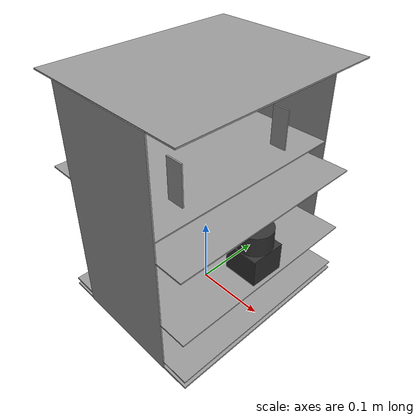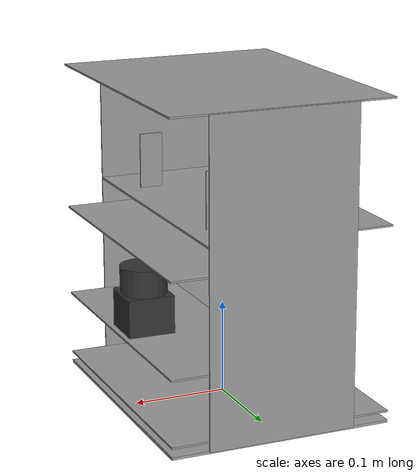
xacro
<?xml version="1.0"?>

<!-- XML namespaces -->
<robot xmlns:sensor="http://playerstage.sourceforge.net/gazebo/xmlschema/#sensor"
       xmlns:controller="http://playerstage.sourceforge.net/gazebo/xmlschema/#controller"
       xmlns:interface="http://playerstage.sourceforge.net/gazebo/xmlschema/#interface"
       xmlns:xacro="http://ros.org/wiki/xacro"
	   name="indomptable">

	<xacro:macro name="cyan1">
		<material name="cyan1">
			<color rgba="0 0.9 0.9 1.0"/>
		</material>
	</xacro:macro>

	<xacro:macro name="cyan2">
		<material name="cyan2">
	     <color rgba="0 0.7 0.7 1.0"/>
		</material>
	</xacro:macro>

	<xacro:macro name="cyan3">
		<material name="cyan3">
	     <color rgba="0 0.5 0.5 1.0"/>
		</material>
	</xacro:macro>

	<xacro:macro name="black">
		<material name="black">
			<color rgba="0.1 0.1 0.1 1.0"/>
		</material>
	</xacro:macro>

	<xacro:macro name="black1">
		<material name="black1">
			<color rgba="0.2 0.2 0.2 1.0"/>
		</material>
	</xacro:macro>

	<xacro:macro name="yellow2">
		<material name="yellow2">
			<color rgba="0.8 0.8 0 1.0"/>
		</material>
	</xacro:macro>

	<xacro:macro name="green1">
		<material name="green1">
			<color rgba="0 1 0 1.0"/>
		</material>
	</xacro:macro>

	<xacro:macro name="green2">
		<material name="green2">
			<color rgba="0.1 0.8 0 1.0"/>
		</material>
	</xacro:macro>

	<xacro:macro name="green3">
		<material name="green3">
			<color rgba="0.1 0.5 0.1 1.0"/>
		</material>
	</xacro:macro>

	<xacro:macro name="grey1">
		<material name="grey1">
			<color rgba="0.9 0.9 0.9 1.0"/>
		</material>
	</xacro:macro>

	<xacro:macro name="grey2">
		<material name="grey2">
			<color rgba="0.6 0.6 0.6 1.0"/>
		</material>
	</xacro:macro>

	<xacro:macro name="grey3">
		<material name="grey3">
			<color rgba="0.8 0.8 0.8 1.0"/>
		</material>
	</xacro:macro>

	<xacro:macro name="blue1">
		<material name="blue1">
			<color rgba="0 0 0.9 1.0"/>
		</material>
	</xacro:macro>

	<xacro:macro name="ax12_color">
		<material name="ax12_color">
			<color rgba="0.1 0.1 0.1 1.0"/>
		</material>
	</xacro:macro>

	<xacro:macro name="bracket_color">
		<material name="bracket_color">
			<color rgba="0.9 0.9 0.9 1.0"/>
		</material>
	</xacro:macro>

	<xacro:macro name="ax12" params="name xyz rpy">
		<link name="${name}">
			<visual>
				<origin xyz="${xyz}" rpy="${rpy}" />
				<geometry>
					<box size="0.5 0.32 0.38" />
				</geometry>
				<material name="black1">
					<color rgba="0.2 0.2 0.2 1.0"/>
				</material>
             </visual>
             <collision>
				<origin xyz="${xyz}" rpy="${rpy}" />
					<geometry>
						<box size="0.5 0.32 0.38" />
					</geometry>
             </collision>
             <xacro:default_inertial mass="0.055" />
        </link>
        <xacro:default_gazebo name="${name}" material="Gazebo/FlatBlack" />
	</xacro:macro>

	<xacro:macro name="bracket1" params="name xyz rpy">
		<link name="${name}">
			<visual>
				<origin xyz="${xyz}" rpy="${rpy}" />
				<geometry>
					<box size="0.05 0.025 0.038" />
				</geometry>
				<material name="black1">
					<color rgba="0.2 0.2 0.2 1.0"/>
				</material>
             </visual>
             <collision>
				<origin xyz="${xyz}" rpy="${rpy}" />
					<geometry>
						<box size="0.05 0.025 0.038" />
					</geometry>
             </collision>
             <xacro:default_inertial mass="0.02" />
        </link>
        <xacro:default_gazebo name="${name}" material="Gazebo/WhiteEmissive" />
	</xacro:macro>

	<xacro:macro name="my_box" params="name lwh xyz rpy mass material *rviz_color">
		<link name="${name}">
			<visual>
				<origin xyz="${xyz}" rpy="${rpy}" />
				<geometry>
					<box size="${lwh}" />
				</geometry>
			    <xacro:insert_block name="rviz_color" />
             </visual>
             <collision>
				<origin xyz="${xyz}" rpy="${rpy}" />
					<geometry>
						<box size="${lwh}" />
					</geometry>
             </collision>
             <xacro:default_inertial mass="${mass}" />
        </link>
        <xacro:default_gazebo name="${name}" material="${material}" />
	</xacro:macro>

	<xacro:macro name="my_cylinder" params="name l r xyz rpy mass material *rviz_color">
		<link name="${name}">
			<visual>
				<origin xyz="${xyz}" rpy="${rpy}" />
				<geometry>
					<cylinder length="${l}" radius="${r}" />
				</geometry>
            	<xacro:insert_block name="rviz_color" />
            </visual>
            <collision>
				<origin xyz="${xyz}" rpy="${rpy}" />
					<geometry>
						<cylinder length="${l}" radius="${r}" />
					</geometry>
            </collision>
            <xacro:default_inertial mass="${mass}" />
        </link>
        <xacro:default_gazebo name="${name}" material="${material}" />
	</xacro:macro>

    <xacro:macro name="default_inertial" params="mass">
		<inertial>
			<mass value="${mass}" />
			<inertia ixx="0.001" ixy="0.0" ixz="0.0"
                     iyy="0.001" iyz="0.0"
                     izz="0.001" />
			</inertial>
    </xacro:macro>

    <xacro:macro name="default_gazebo" params="name material">
 		<gazebo reference="${name}">
			<material>${material}</material>
			<selfCollide>false</selfCollide>
			<turnGravityOff>true</turnGravityOff>
		</gazebo>
    </xacro:macro>

 	<!-- ============================   Body   ============================ -->

	<xacro:my_box name="base_link" lwh="0.24 0.3 0.003" xyz="0 0 0" rpy="0 0 0" mass="0.5" material="Gazebo/Grey">
		<xacro:grey2 />
	</xacro:my_box>

	<xacro:my_box name="base_laser_bottom" lwh="0.05 0.05 0.041" xyz="0 0 0" rpy="0 0 0" mass="0.1" material="Gazebo/FlatBlack">
		<xacro:black1 />
	</xacro:my_box>

	<xacro:my_cylinder name="base_laser" l="0.029" r="0.025" xyz="0 0 0" rpy="0 0 0" mass="0.1" material="Gazebo/Grey">
		<xacro:black1 />
	</xacro:my_cylinder>

	<xacro:my_box name="first_level" lwh="0.24 0.3 0.002" xyz="0 0 0" rpy="0 0 0" mass="0.5" material="Gazebo/Grey">
                <xacro:grey2 />
        </xacro:my_box>

	<xacro:my_box name="second_level" lwh="0.12 0.3 0.002" xyz="0 0 0" rpy="0 0 0" mass="0.5" material="Gazebo/Grey">
                <xacro:grey2 />
        </xacro:my_box>

	<xacro:my_box name="third_level" lwh="0.12 0.3 0.002" xyz="0 0 0" rpy="0 0 0" mass="0.5" material="Gazebo/Grey">
                <xacro:grey2 />
        </xacro:my_box>

	<xacro:my_box name="netbook_level" lwh="0.2 0.3 0.002" xyz="0 0 0" rpy="0 0 0" mass="0.5" material="Gazebo/Grey">
                <xacro:grey2 />
        </xacro:my_box>

	<xacro:my_box name="top_level" lwh="0.24 0.3 0.002" xyz="0 0 0" rpy="0 0 0" mass="0.5" material="Gazebo/Grey">
                <xacro:grey2 />
        </xacro:my_box>

	<xacro:my_box name="right_arm_panel" lwh="0.025 0.002 0.06" xyz="0 0 0" rpy="0 0 0" mass="0.5" material="Gazebo/Grey">
                <xacro:grey2 />
        </xacro:my_box>

        <xacro:my_box name="left_arm_panel" lwh="0.025 0.002 0.06" xyz="0 0 0" rpy="0 0 0" mass="0.5" material="Gazebo/Grey">
                <xacro:grey2 />
        </xacro:my_box>

        <xacro:my_box name="right_panel" lwh="0.16 0.002 0.34" xyz="0 0 0" rpy="0 0 0" mass="0.5" material="Gazebo/Grey">
                <xacro:grey2 />
        </xacro:my_box>

        <xacro:my_box name="left_panel" lwh="0.16 0.002 0.34" xyz="0 0 0" rpy="0 0 0" mass="0.5" material="Gazebo/Grey">
                <xacro:grey2 />
        </xacro:my_box>

 	<!-- ============================   Arms   ============================ -->

	<xacro:macro name="arm" params="side reflect">

	</xacro:macro>

	<xacro:arm side="left" reflect="1" />

	<xacro:arm side="right" reflect="-1" />

	<!-- =================== Joint Definitions ==================== -->

	<joint name="first_level_joint" type="fixed">
    	<parent link="base_link" />
    	<child link="first_level" />
    	<origin xyz="0 0 0.011" rpy="0 0 0" />
	</joint>

	<joint name="second_level_joint" type="fixed">
    	<parent link="first_level" />
    	<child link="second_level" />
    	<origin xyz="0.06 0 0.07" rpy="0 0 0" />
	</joint>

	<joint name="third_level_joint" type="fixed">
    	<parent link="first_level" />
    	<child link="third_level" />
    	<origin xyz="0.06 0 0.17" rpy="0 0 0" />
	</joint>

	<joint name="netbook_level_joint" type="fixed">
    	<parent link="base_link" />
    	<child link="netbook_level" />
    	<origin xyz="-0.02 0 0.21" rpy="0 0 0" />
	</joint>

	<joint name="top_level_joint" type="fixed">
    	<parent link="base_link" />
    	<child link="top_level" />
    	<origin xyz="0 0 0.34" rpy="0 0 0" />
	</joint>

	<joint name="base_laser_bottom_joint" type="fixed">
    	<parent link="second_level" />
    	<child link="base_laser_bottom" />
    	<origin xyz="0.03 0 0.022" rpy="0 0 -0.02" />
	</joint>

	<joint name="base_laser_joint" type="fixed">
    	<parent link="base_laser_bottom" />
    	<child link="base_laser" />
    	<origin xyz="0 0 0.035" rpy="0 0 0" />
	</joint>

	<joint name="left_arm_panel_joint" type="fixed">
    	<parent link="netbook_level" />
    	<child link="left_arm_panel" />
    	<origin xyz="0.065 0.09 0.03" rpy="0 0 0" />
	</joint>

        <joint name="right_arm_panel_joint" type="fixed">
        <parent link="netbook_level" />
        <child link="right_arm_panel" />
        <origin xyz="0.065 -0.09 0.03" rpy="0 0 0" />
        </joint>

        <joint name="left_panel_joint" type="fixed">
        <parent link="base_link" />
        <child link="left_panel" />
        <origin xyz="0 0.15 0.17" rpy="0 0 0" />
        </joint>

        <joint name="right_panel_joint" type="fixed">
        <parent link="base_link" />
        <child link="right_panel" />
        <origin xyz="0 -0.15 0.17" rpy="0 0 0" />
        </joint>

	<gazebo reference="indomptable">
  	</gazebo>
</robot>
